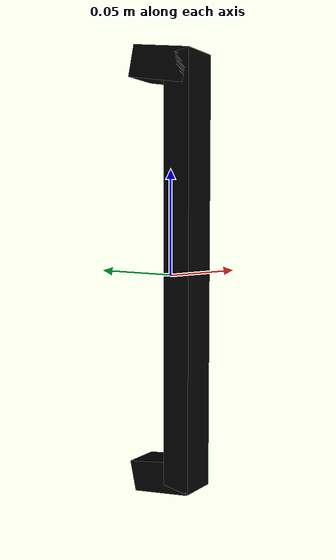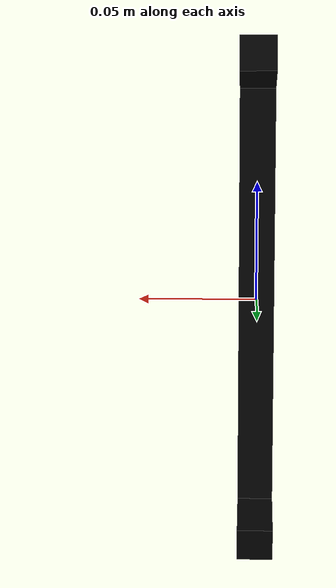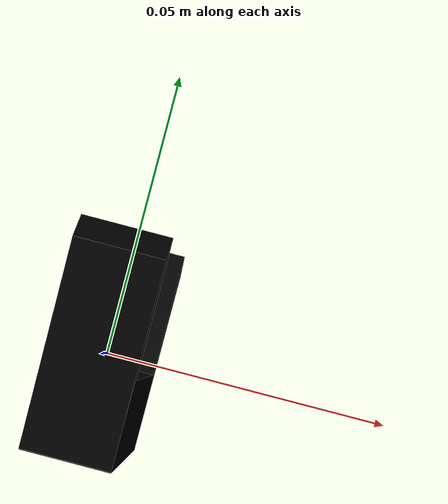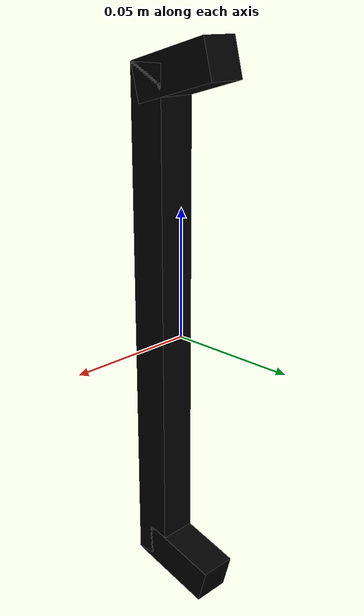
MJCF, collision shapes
<?xml version="1.0" ?>
<mujoco model="model">
    <compiler angle="radian"/>
    <asset>
        <mesh file="visuals/CabinetHandle033.obj" name="mesh"/>
        <texture file="visuals/T_BC001.png" name="tex" type="2d"/>
        <material name="mat" rgba="1 1 1 1.0" texture="tex" shininess="0.4472135901451111" specular="1"/>
    </asset>
    <default>
        <default class="visual">
            <geom conaffinity="0" contype="0" group="1" type="mesh"/>
        </default>
        <default class="collision">
            <geom group="0" rgba="0 0 0 0"/>
        </default>
        <default class="spawn">
            <geom group="0" rgba="0 0 0 0" contype="0" conaffinity="0"/>
            <site group="0" rgba="0 0 0 0"/>
        </default>
    </default>
    <worldbody>
        <body>
            <body name="object">
                <geom mesh="mesh" type="mesh" solimp="0.998 0.998 0.001" solref="0.001 1" density="100" friction="0.95 0.3 0.1" class="visual" material="mat"/>
                <geom class="collision" type="box" pos="-5.272886482998729e-08 -0.009952547959983349 5.854185656062327e-05" size="0.007550871931016445 0.007550839800387621 0.10011377930641174" quat="1.0 0.0 0.0 0.0"/>
                <geom class="collision" type="box" pos="-5.272886482998729e-08 0.0018159218598157167 0.09781546145677567" size="0.007550871931016445 0.00738110113888979 0.017883554100990295" quat="0.6092294454574585 0.7929940223693848 0.0 0.0"/>
                <geom class="collision" type="box" pos="-5.272886482998729e-08 0.002030035713687539 -0.09787438064813614" size="0.007550871931016445 0.007376406341791153 0.017648331820964813" quat="0.6092321276664734 -0.7929919362068176 -0.0 0.0" name="handle_connector"/>
            </body>
        </body>
    </worldbody>
    <actuator/>
</mujoco>
